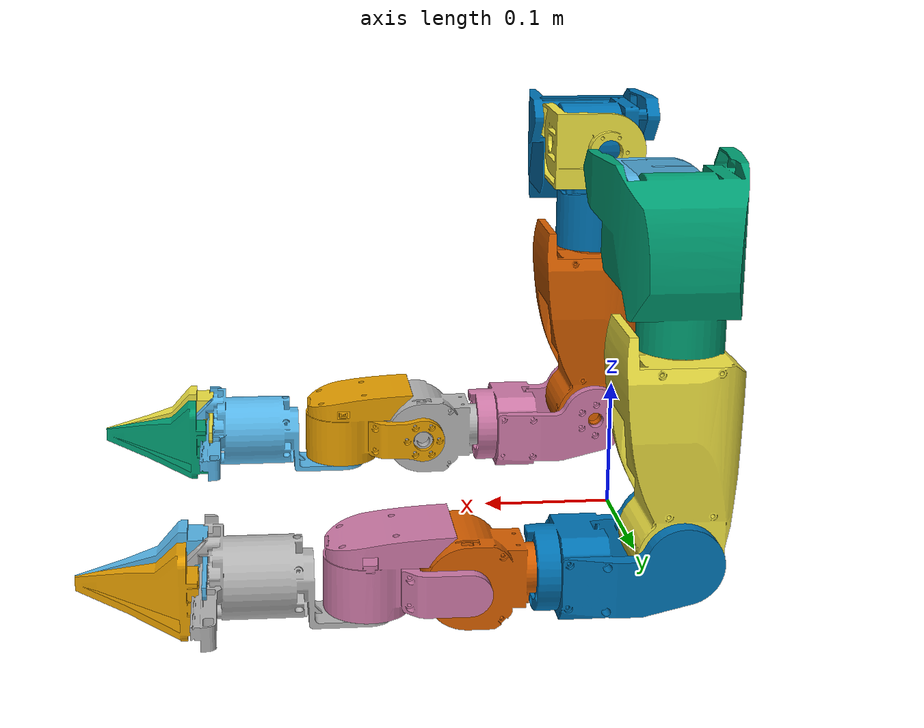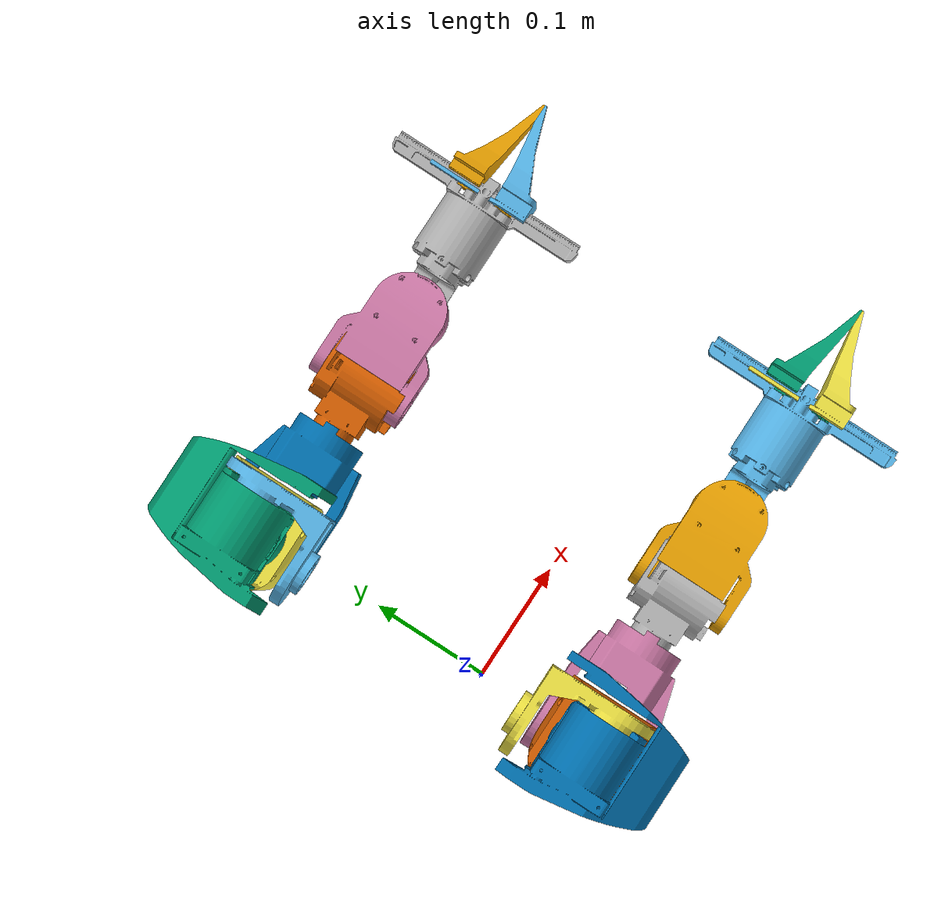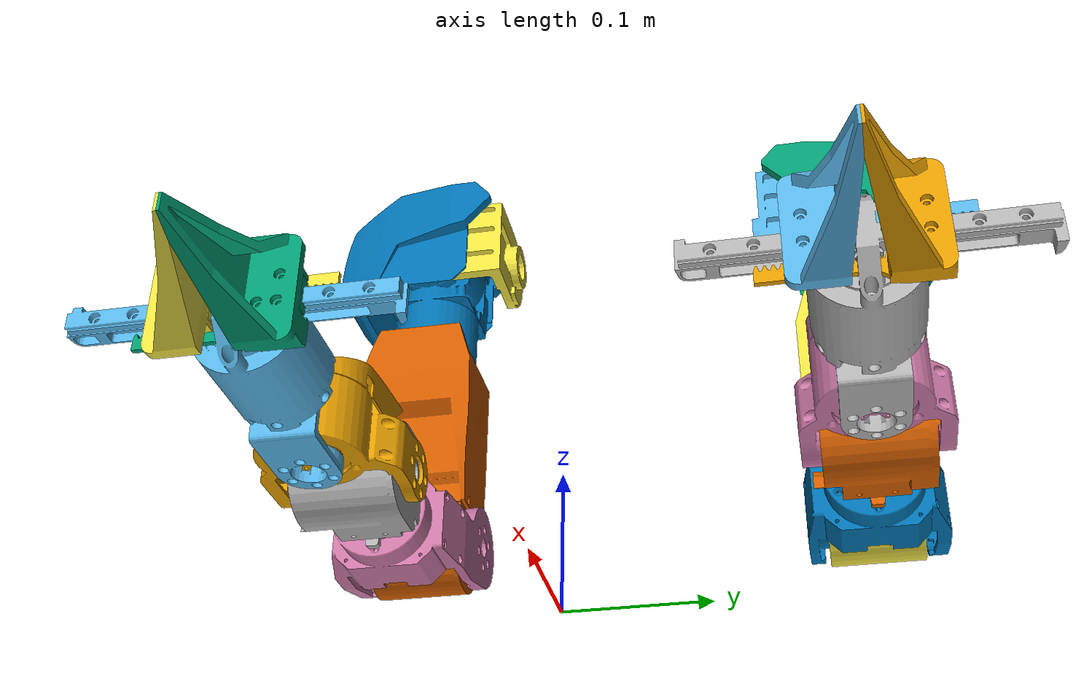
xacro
<?xml version="1.0"?>
<!-- Split-body planning URDF only: root = body, dual 7-DOF arms + grippers.
     Full robot (base/lift/waist/head) lives in arx_x7s_description. -->
<robot name="ARX X7S Arms" xmlns:xacro="http://www.ros.org/wiki/xacro">

  <xacro:include filename="$(find arx_x7s_description)/xacro/components/arm.xacro"/>
  <xacro:include filename="$(find arx_x7s_description)/xacro/components/gripper.xacro"/>

  <link name="body"/>

  <xacro:Arm name="left" direction="1"/>
  <xacro:Gripper name="left" direction="1"/>
  <xacro:Arm name="right" direction="-1"/>
  <xacro:Gripper name="right" direction="-1"/>

</robot>

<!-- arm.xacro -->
<robot xmlns:xacro="http://www.ros.org/wiki/xacro">
  <xacro:property name="PI" value="3.1415926535897931"/>

  <!-- X7S Arm Macro
    Parameters:
    - name: arm name prefix (e.g., "left" or "right")
    - direction: direction multiplier (1 for left, -1 for right)
  -->
  <xacro:macro name="Arm" params="name direction:=1">
    <xacro:property name="prefix" value="${name + '_' if name else ''}"/>
    <xacro:property name="dir" value="${direction}"/>

    <!-- Calculate positions and orientations based on direction -->
    <!-- Left arm: mount at y=0.1424, right arm: mount at y=-0.0336 -->
    <!-- Using interpolation: left_y = 0.1424, right_y = -0.0336 -->
    <!-- Average: (0.1424 + (-0.0336)) / 2 = 0.0544, difference: 0.1424 - 0.0544 = 0.088 -->
    <xacro:property name="mount_y" value="${0.0544 + dir * 0.088}"/>
    <xacro:property name="shoulder_y" value="${dir * 0.063}"/>
    <xacro:property name="elbow_y" value="${-dir * 0.02725}"/>
    <xacro:property name="elbow_roll_y" value="${dir * 0.02725}"/>
    <xacro:property name="wrist_y" value="${-dir * 0.02725}"/>
    <xacro:property name="wrist_yaw_y" value="${dir * 0.02725}"/>

    <link name="${prefix}mount">
      <inertial>
        <origin xyz="0.0203118776657915 ${dir * 0.0282074621926044} -0.000172803675324795"/>
        <mass value="0.131891884746085"/>
        <inertia
            ixx="0.00012"
            ixy="${dir * 0.00004}"
            ixz="0.00000"
            iyy="0.00009"
            iyz="0.00000"
            izz="0.00014"/>
      </inertial>
      <visual>
        <geometry>
          <mesh filename="file://$(find arx_x7s_description)/meshes/arm/base.obj" scale="1 ${dir} 1"/>
        </geometry>
      </visual>
      <collision>
        <geometry>
          <mesh filename="file://$(find arx_x7s_description)/meshes/arm/base.obj" scale="1 ${dir} 1"/>
        </geometry>
      </collision>
    </link>

    <joint name="${prefix}joint1" type="revolute">
      <origin xyz="0 ${mount_y} 0.28"/>
      <parent link="body"/>
      <child link="${prefix}mount"/>
      <axis xyz="0 -1 0"/>
      <limit lower="-0.523599" upper="3.141593" effort="100" velocity="${PI}"/>
    </joint>

    <link name="${prefix}shoulder">
      <inertial>
        <origin xyz="-0.0244518842072319 ${dir * 0.00440119803297737} -0.0251861647177716"/>
        <mass value="1.03161675931573"/>
        <inertia
            ixx="0.00167"
            ixy="${dir * 0.00003}"
            ixz="0.00007"
            iyy="0.00166"
            iyz="${dir * 0.00005}"
            izz="0.00088"/>
      </inertial>
      <visual>
        <geometry>
          <mesh filename="file://$(find arx_x7s_description)/meshes/arm/link1.obj" scale="1 ${dir} 1"/>
        </geometry>
      </visual>
      <collision>
        <geometry>
          <mesh filename="file://$(find arx_x7s_description)/meshes/arm/link1.obj" scale="1 ${dir} 1"/>
        </geometry>
      </collision>
    </link>

    <joint name="${prefix}joint2" type="revolute">
      <origin xyz="0.02725 ${shoulder_y} 0"/>
      <parent link="${prefix}mount"/>
      <child link="${prefix}shoulder"/>
      <axis xyz="${dir} 0 0"/>
      <limit lower="-0.436332" upper="1.570796" effort="100" velocity="${PI}"/>
    </joint>

    <link name="${prefix}upper_arm">
      <inertial>
        <origin xyz="0.000827778295739684 ${-dir * 0.00148365067233044} -0.105295191761956"/>
        <mass value="0.736099125577072"/>
        <inertia
            ixx="0.00229"
            ixy="0.00000"
            ixz="0.00009"
            iyy="0.00230"
            iyz="${dir * 0.00004}"
            izz="0.00060"/>
      </inertial>
      <visual>
        <geometry>
          <mesh filename="file://$(find arx_x7s_description)/meshes/arm/link2.obj"/>
        </geometry>
      </visual>
      <collision>
        <geometry>
          <mesh filename="file://$(find arx_x7s_description)/meshes/arm/link2.obj"/>
        </geometry>
      </collision>
    </link>

    <joint name="${prefix}joint3" type="revolute">
      <origin xyz="-0.02725 0 -0.0865"/>
      <parent link="${prefix}shoulder"/>
      <child link="${prefix}upper_arm"/>
      <axis xyz="0 0 ${-dir}"/>
      <limit lower="-1.570796" upper="1.570796" effort="100" velocity="${PI}"/>
    </joint>

    <link name="${prefix}elbow">
      <inertial>
        <origin xyz="0.0593724453089232 ${dir * 0.0253235620813382} -0.0125969681001941"/>
        <mass value="0.487506795308259"/>
        <inertia
            ixx="0.00040"
            ixy="${dir * 0.00003}"
            ixz="-0.00007"
            iyy="0.00055"
            iyz="${-dir * 0.00001}"
            izz="0.00069"/>
      </inertial>
      <visual>
        <geometry>
          <mesh filename="file://$(find arx_x7s_description)/meshes/arm/link3.obj" scale="1 ${dir} 1"/>
        </geometry>
      </visual>
      <collision>
        <geometry>
          <mesh filename="file://$(find arx_x7s_description)/meshes/arm/link3.obj" scale="1 ${dir} 1"/>
        </geometry>
      </collision>
    </link>

    <joint name="${prefix}joint4" type="revolute">
      <origin xyz="0 ${elbow_y} -0.1435"/>
      <parent link="${prefix}upper_arm"/>
      <child link="${prefix}elbow"/>
      <axis xyz="0 1 0"/>
      <limit lower="-0.785398" upper="1.570796" effort="100" velocity="${PI}"/>
    </joint>

    <link name="${prefix}forearm">
      <inertial>
        <origin xyz="0.0458969495196738 ${-dir * 0.000535552755431795} -9.66305755581987E-05"/>
        <mass value="0.487431771518004"/>
        <inertia
            ixx="0.00024"
            ixy="0.00000"
            ixz="0.00000"
            iyy="0.00027"
            iyz="0.00000"
            izz="0.00029"/>
      </inertial>
      <visual>
        <geometry>
          <mesh filename="file://$(find arx_x7s_description)/meshes/arm/link4.obj"/>
        </geometry>
      </visual>
      <collision>
        <geometry>
          <mesh filename="file://$(find arx_x7s_description)/meshes/arm/link4.obj" />
        </geometry>
      </collision>
    </link>

    <joint name="${prefix}joint5" type="revolute">
      <origin xyz="0.0945 ${elbow_roll_y} -0.015"/>
      <parent link="${prefix}elbow"/>
      <child link="${prefix}forearm"/>
      <axis xyz="1 0 0"/>
      <limit lower="-2.792527" upper="2.792527" effort="100" velocity="${PI}"/>
    </joint>

    <link name="${prefix}wrist">
      <inertial>
        <origin xyz="0.0575036493913677 ${dir * 0.0264951119112793} 0.00135889493052876"/>
        <mass value="0.432944265521347"/>
        <inertia
            ixx="0.00025"
            ixy="${dir * 0.00002}"
            ixz="-0.00002"
            iyy="0.00033"
            iyz="0.00000"
            izz="0.00041"/>
      </inertial>
      <visual>
        <geometry>
          <mesh filename="file://$(find arx_x7s_description)/meshes/arm/link5.obj" scale="1 ${dir} 1"/>
        </geometry>
      </visual>
      <collision>
        <geometry>
          <mesh filename="file://$(find arx_x7s_description)/meshes/arm/link5.obj" scale="1 ${dir} 1"/>
        </geometry>
      </collision>
    </link>

    <joint name="${prefix}joint6" type="revolute">
      <origin xyz="0.05 ${wrist_y} 0"/>
      <parent link="${prefix}forearm"/>
      <child link="${prefix}wrist"/>
      <axis xyz="0 -1 0"/>
      <limit lower="-0.785398" upper="1.570796" effort="100" velocity="${PI}"/>
    </joint>

  </xacro:macro>
</robot>

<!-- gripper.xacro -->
<robot xmlns:xacro="http://www.ros.org/wiki/xacro">
	<!-- X7S Gripper Macro
		Parameters:
		- name: gripper name prefix (e.g., "left" or "right")
		- direction: direction multiplier (1 for left, -1 for right)
	-->
	<xacro:macro name="Gripper" params="name direction:=1">
		<xacro:property name="prefix" value="${name + '_' if name else ''}"/>
		<xacro:property name="dir" value="${direction}"/>

		<link name="${prefix}gripper_base">
			<inertial>
				<origin xyz="0.0782374674886107 2.27688611500743E-05 0.0203907673011059"/>
				<mass value="0.471847835335863"/>
				<inertia
						ixx="0.00040"
						ixy="0.00000"
						ixz="0.00006"
						iyy="0.00043"
						iyz="0.00000"
						izz="0.00064"/>
			</inertial>
			<visual>
				<geometry>
					<mesh filename="file://$(find arx_x7s_description)/meshes/gripper/gripper_base.obj"/>
				</geometry>
			</visual>
			<collision>
				<geometry>
					<mesh filename="file://$(find arx_x7s_description)/meshes/gripper/gripper_base.obj"/>
				</geometry>
			</collision>
		</link>

		<joint name="${prefix}joint7" type="revolute">
			<origin xyz="0.066 ${dir * 0.02725} -0.022"/>
			<parent link="${prefix}wrist"/>
			<child link="${prefix}gripper_base"/>
			<axis xyz="0 0 ${-dir}"/>
			<limit lower="-1.570796" upper="1.570796" effort="100" velocity="100"/>
		</joint>

		<link name="${prefix}gripper_left">
			<inertial>
				<origin xyz="-0.000355222592141713 -0.00782703850949387 -0.00298831676915334"/>
				<mass value="0.0647981743053201"/>
				<inertia
						ixx="0.00002"
						ixy="0.00000"
						ixz="0.00000"
						iyy="0.00003"
						iyz="0.00000"
						izz="0.00003"/>
			</inertial>
			<visual>
				<geometry>
					<mesh filename="file://$(find arx_x7s_description)/meshes/gripper/gripper_left.obj"/>
				</geometry>
			</visual>
			<collision>
				<geometry>
					<mesh filename="file://$(find arx_x7s_description)/meshes/gripper/gripper_left.obj"/>
				</geometry>
			</collision>
		</link>

		<joint name="${prefix}gripper_joint" type="prismatic">
			<origin xyz="0.12737 0.024896 0.021756"/>
			<parent link="${prefix}gripper_base"/>
			<child link="${prefix}gripper_left"/>
			<axis xyz="0 1 0"/>
			<limit lower="0" upper="0.044" effort="100" velocity="100"/>
		</joint>

		<link name="${prefix}gripper_right">
			<inertial>
				<origin xyz="-0.000355223470276722 0.00782768741060949 0.00242005652832489"/>
				<mass value="0.0647981725781686"/>
				<inertia
						ixx="0.00002"
						ixy="0.00000"
						ixz="0.00000"
						iyy="0.00003"
						iyz="0.00000"
						izz="0.00003"/>
			</inertial>
			<visual>
				<geometry>
					<mesh filename="file://$(find arx_x7s_description)/meshes/gripper/gripper_right.obj"/>
				</geometry>
			</visual>
			<collision>
				<geometry>
					<mesh filename="file://$(find arx_x7s_description)/meshes/gripper/gripper_right.obj"/>
				</geometry>
			</collision>
		</link>

		<joint name="${prefix}gripper_1" type="prismatic">
			<origin xyz="0.12737 -0.0249 0.021756"/>
			<parent link="${prefix}gripper_base"/>
			<child link="${prefix}gripper_right"/>
			<axis xyz="0 -1 0"/>
			<limit lower="0" upper="0.044" effort="100" velocity="100"/>
			<mimic joint="${prefix}gripper_joint" multiplier="1" offset="0"/>
		</joint>

		<link name="${prefix}eef"/>
		<joint name="${prefix}eef_joint" type="fixed">
			<origin xyz="0.18737 0 0.021756"/>
			<parent link="${prefix}gripper_base"/>
			<child link="${prefix}eef"/>
		</joint>
	</xacro:macro>
</robot>
